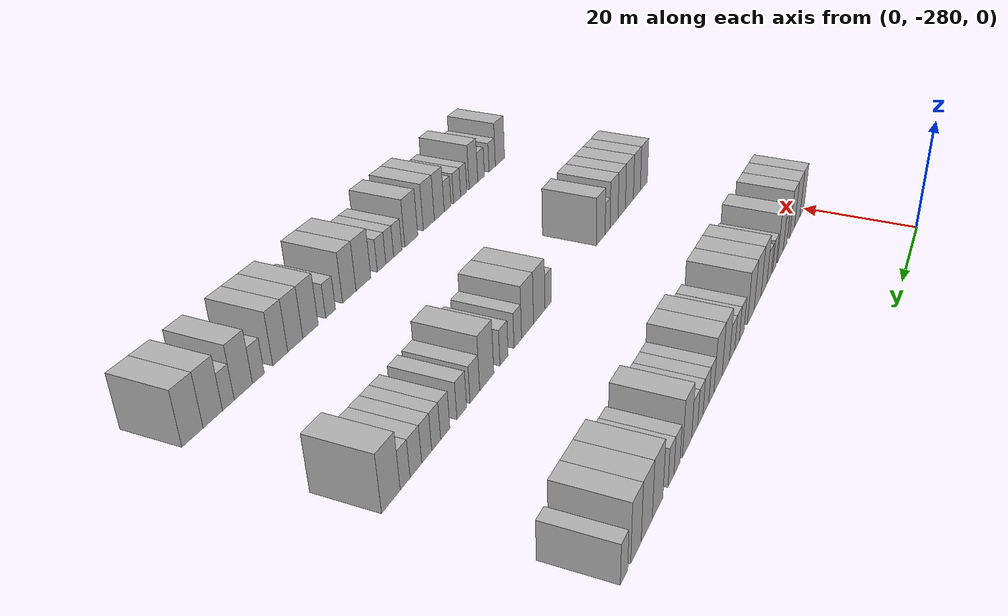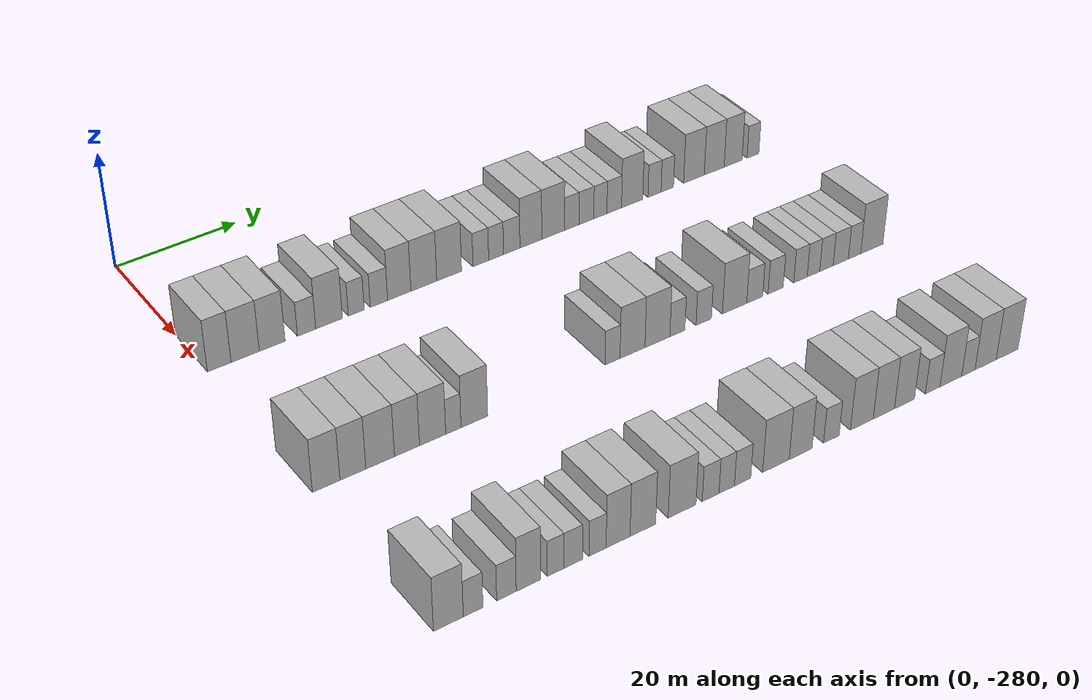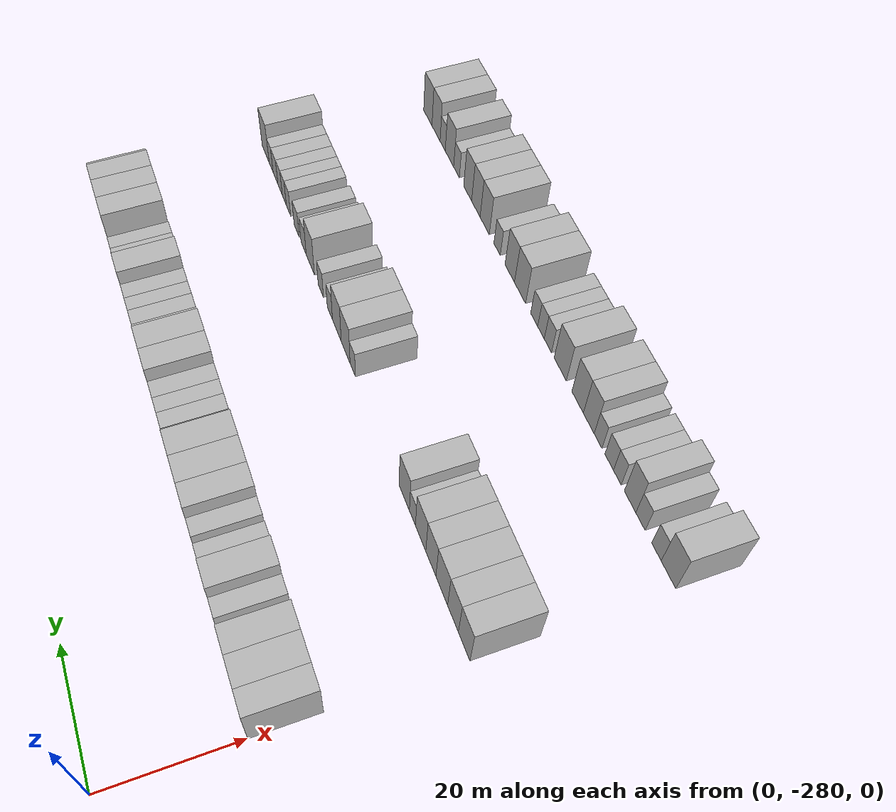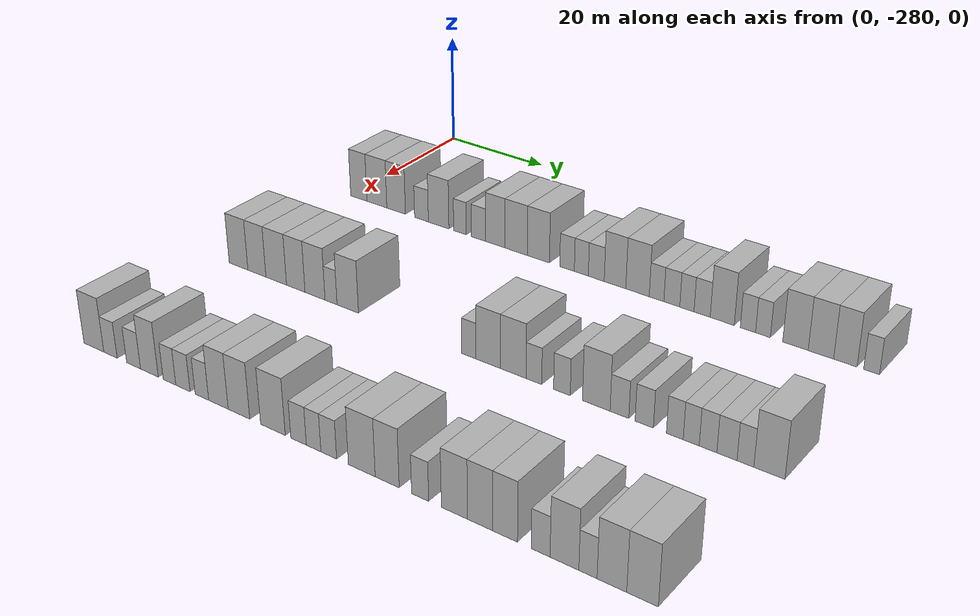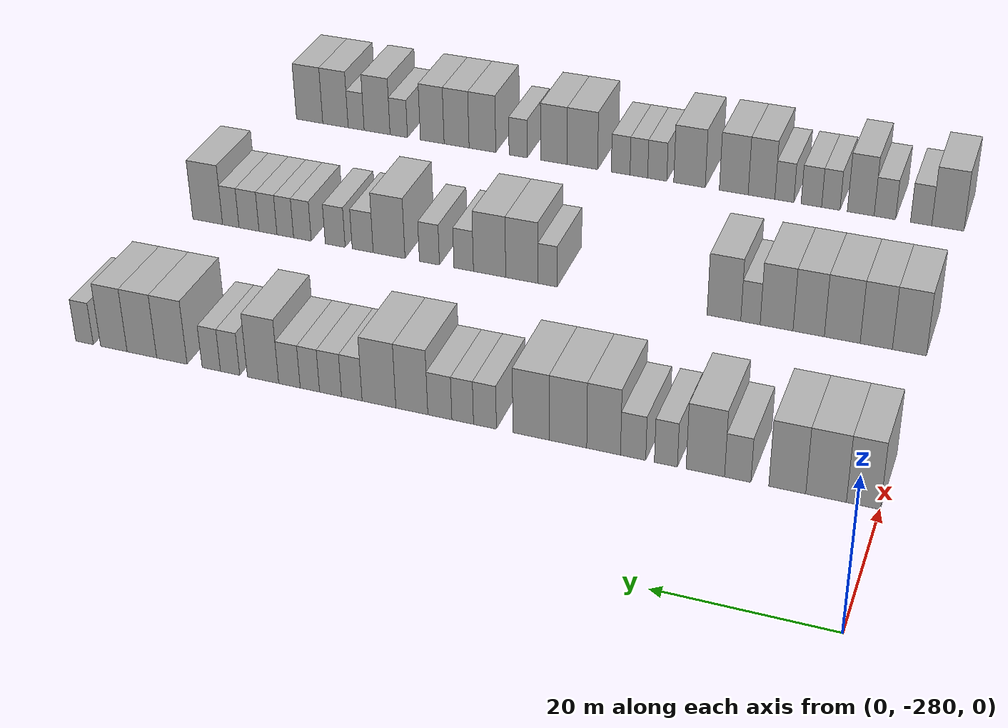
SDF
<sdf version="1.6">
 <world name="default">
  <model name="building_1">
   <static>1</static>
   <pose>25.0000 -278.1522 0 0.000000 0.000000 0.000000</pose>
   <link name="link">
    <pose>0 0 4.50 0 0 0</pose>
    <collision name="collision"><geometry><box><size>10.0000 3.6957 9.0000</size></box></geometry></collision>
    <visual name="visual">
     <cast_shadows>0</cast_shadows>
     <geometry><box><size>10.0000 3.6957 9.0000</size></box></geometry>
     <material>
      <script>
       <uri>model://HANNAS_wall/materials/scripts</uri>
       <uri>model://HANNAS_wall/materials/textures</uri>
       <name>vrc/HANNAS_wall</name>
      </script>
     </material>
    </visual>
   </link>
  </model>
  <model name="building_2">
   <static>1</static>
   <pose>25.0000 -274.0733 0 0.000000 0.000000 0.000000</pose>
   <link name="link">
    <pose>0 0 4.50 0 0 0</pose>
    <collision name="collision"><geometry><box><size>10.0000 4.4621 9.0000</size></box></geometry></collision>
    <visual name="visual">
     <cast_shadows>0</cast_shadows>
     <geometry><box><size>10.0000 4.4621 9.0000</size></box></geometry>
     <material>
      <script>
       <uri>model://HANNAS_wall/materials/scripts</uri>
       <uri>model://HANNAS_wall/materials/textures</uri>
       <name>vrc/HANNAS_wall</name>
      </script>
     </material>
    </visual>
   </link>
  </model>
  <model name="building_3">
   <static>1</static>
   <pose>25.0000 -269.7885 0 0.000000 0.000000 0.000000</pose>
   <link name="link">
    <pose>0 0 4.50 0 0 0</pose>
    <collision name="collision"><geometry><box><size>10.0000 4.1075 9.0000</size></box></geometry></collision>
    <visual name="visual">
     <cast_shadows>0</cast_shadows>
     <geometry><box><size>10.0000 4.1075 9.0000</size></box></geometry>
     <material>
      <script>
       <uri>model://HANNAS_wall/materials/scripts</uri>
       <uri>model://HANNAS_wall/materials/textures</uri>
       <name>vrc/HANNAS_wall</name>
      </script>
     </material>
    </visual>
   </link>
  </model>
  <model name="building_4">
   <static>1</static>
   <pose>25.0000 -264.2511 0 0.000000 0.000000 0.000000</pose>
   <link name="link">
    <pose>0 0 3.00 0 0 0</pose>
    <collision name="collision"><geometry><box><size>10.0000 2.9672 6.0000</size></box></geometry></collision>
    <visual name="visual">
     <cast_shadows>0</cast_shadows>
     <geometry><box><size>10.0000 2.9672 6.0000</size></box></geometry>
     <material>
      <script>
       <uri>model://HANNAS_wall/materials/scripts</uri>
       <uri>model://HANNAS_wall/materials/textures</uri>
       <name>vrc/HANNAS_wall</name>
      </script>
     </material>
    </visual>
   </link>
  </model>
  <model name="building_5">
   <static>1</static>
   <pose>25.0000 -260.5834 0 0.000000 0.000000 0.000000</pose>
   <link name="link">
    <pose>0 0 4.50 0 0 0</pose>
    <collision name="collision"><geometry><box><size>10.0000 4.3683 9.0000</size></box></geometry></collision>
    <visual name="visual">
     <cast_shadows>0</cast_shadows>
     <geometry><box><size>10.0000 4.3683 9.0000</size></box></geometry>
     <material>
      <script>
       <uri>model://HANNAS_wall/materials/scripts</uri>
       <uri>model://HANNAS_wall/materials/textures</uri>
       <name>vrc/HANNAS_wall</name>
      </script>
     </material>
    </visual>
   </link>
  </model>
  <model name="building_6">
   <static>1</static>
   <pose>25.0000 -256.0788 0 0.000000 0.000000 0.000000</pose>
   <link name="link">
    <pose>0 0 3.00 0 0 0</pose>
    <collision name="collision"><geometry><box><size>10.0000 2.6410 6.0000</size></box></geometry></collision>
    <visual name="visual">
     <cast_shadows>0</cast_shadows>
     <geometry><box><size>10.0000 2.6410 6.0000</size></box></geometry>
     <material>
      <script>
       <uri>model://HANNAS_wall/materials/scripts</uri>
       <uri>model://HANNAS_wall/materials/textures</uri>
       <name>vrc/HANNAS_wall</name>
      </script>
     </material>
    </visual>
   </link>
  </model>
  <model name="building_7">
   <static>1</static>
   <pose>25.0000 -252.2933 0 0.000000 0.000000 0.000000</pose>
   <link name="link">
    <pose>0 0 3.00 0 0 0</pose>
    <collision name="collision"><geometry><box><size>10.0000 2.9300 6.0000</size></box></geometry></collision>
    <visual name="visual">
     <cast_shadows>0</cast_shadows>
     <geometry><box><size>10.0000 2.9300 6.0000</size></box></geometry>
     <material>
      <script>
       <uri>model://HANNAS_wall/materials/scripts</uri>
       <uri>model://HANNAS_wall/materials/textures</uri>
       <name>vrc/HANNAS_wall</name>
      </script>
     </material>
    </visual>
   </link>
  </model>
  <model name="building_8">
   <static>1</static>
   <pose>25.0000 -248.8521 0 0.000000 0.000000 0.000000</pose>
   <link name="link">
    <pose>0 0 4.50 0 0 0</pose>
    <collision name="collision"><geometry><box><size>10.0000 3.9522 9.0000</size></box></geometry></collision>
    <visual name="visual">
     <cast_shadows>0</cast_shadows>
     <geometry><box><size>10.0000 3.9522 9.0000</size></box></geometry>
     <material>
      <script>
       <uri>model://HANNAS_wall/materials/scripts</uri>
       <uri>model://HANNAS_wall/materials/textures</uri>
       <name>vrc/HANNAS_wall</name>
      </script>
     </material>
    </visual>
   </link>
  </model>
  <model name="building_9">
   <static>1</static>
   <pose>25.0000 -244.6514 0 0.000000 0.000000 0.000000</pose>
   <link name="link">
    <pose>0 0 4.50 0 0 0</pose>
    <collision name="collision"><geometry><box><size>10.0000 4.4492 9.0000</size></box></geometry></collision>
    <visual name="visual">
     <cast_shadows>0</cast_shadows>
     <geometry><box><size>10.0000 4.4492 9.0000</size></box></geometry>
     <material>
      <script>
       <uri>model://HANNAS_wall/materials/scripts</uri>
       <uri>model://HANNAS_wall/materials/textures</uri>
       <name>vrc/HANNAS_wall</name>
      </script>
     </material>
    </visual>
   </link>
  </model>
  <model name="building_10">
   <static>1</static>
   <pose>25.0000 -240.2662 0 0.000000 0.000000 0.000000</pose>
   <link name="link">
    <pose>0 0 4.50 0 0 0</pose>
    <collision name="collision"><geometry><box><size>10.0000 4.3212 9.0000</size></box></geometry></collision>
    <visual name="visual">
     <cast_shadows>0</cast_shadows>
     <geometry><box><size>10.0000 4.3212 9.0000</size></box></geometry>
     <material>
      <script>
       <uri>model://HANNAS_wall/materials/scripts</uri>
       <uri>model://HANNAS_wall/materials/textures</uri>
       <name>vrc/HANNAS_wall</name>
      </script>
     </material>
    </visual>
   </link>
  </model>
  <model name="building_11">
   <static>1</static>
   <pose>25.0000 -234.7153 0 0.000000 0.000000 0.000000</pose>
   <link name="link">
    <pose>0 0 3.00 0 0 0</pose>
    <collision name="collision"><geometry><box><size>10.0000 2.7806 6.0000</size></box></geometry></collision>
    <visual name="visual">
     <cast_shadows>0</cast_shadows>
     <geometry><box><size>10.0000 2.7806 6.0000</size></box></geometry>
     <material>
      <script>
       <uri>model://HANNAS_wall/materials/scripts</uri>
       <uri>model://HANNAS_wall/materials/textures</uri>
       <name>vrc/HANNAS_wall</name>
      </script>
     </material>
    </visual>
   </link>
  </model>
  <model name="building_12">
   <static>1</static>
   <pose>25.0000 -232.0040 0 0.000000 0.000000 0.000000</pose>
   <link name="link">
    <pose>0 0 3.00 0 0 0</pose>
    <collision name="collision"><geometry><box><size>10.0000 2.6419 6.0000</size></box></geometry></collision>
    <visual name="visual">
     <cast_shadows>0</cast_shadows>
     <geometry><box><size>10.0000 2.6419 6.0000</size></box></geometry>
     <material>
      <script>
       <uri>model://HANNAS_wall/materials/scripts</uri>
       <uri>model://HANNAS_wall/materials/textures</uri>
       <name>vrc/HANNAS_wall</name>
      </script>
     </material>
    </visual>
   </link>
  </model>
  <model name="building_13">
   <static>1</static>
   <pose>25.0000 -229.2043 0 0.000000 0.000000 0.000000</pose>
   <link name="link">
    <pose>0 0 3.00 0 0 0</pose>
    <collision name="collision"><geometry><box><size>10.0000 2.9576 6.0000</size></box></geometry></collision>
    <visual name="visual">
     <cast_shadows>0</cast_shadows>
     <geometry><box><size>10.0000 2.9576 6.0000</size></box></geometry>
     <material>
      <script>
       <uri>model://HANNAS_wall/materials/scripts</uri>
       <uri>model://HANNAS_wall/materials/textures</uri>
       <name>vrc/HANNAS_wall</name>
      </script>
     </material>
    </visual>
   </link>
  </model>
  <model name="building_14">
   <static>1</static>
   <pose>25.0000 -225.7431 0 0.000000 0.000000 0.000000</pose>
   <link name="link">
    <pose>0 0 4.50 0 0 0</pose>
    <collision name="collision"><geometry><box><size>10.0000 3.9648 9.0000</size></box></geometry></collision>
    <visual name="visual">
     <cast_shadows>0</cast_shadows>
     <geometry><box><size>10.0000 3.9648 9.0000</size></box></geometry>
     <material>
      <script>
       <uri>model://HANNAS_wall/materials/scripts</uri>
       <uri>model://HANNAS_wall/materials/textures</uri>
       <name>vrc/HANNAS_wall</name>
      </script>
     </material>
    </visual>
   </link>
  </model>
  <model name="building_15">
   <static>1</static>
   <pose>25.0000 -221.6441 0 0.000000 0.000000 0.000000</pose>
   <link name="link">
    <pose>0 0 4.50 0 0 0</pose>
    <collision name="collision"><geometry><box><size>10.0000 4.2332 9.0000</size></box></geometry></collision>
    <visual name="visual">
     <cast_shadows>0</cast_shadows>
     <geometry><box><size>10.0000 4.2332 9.0000</size></box></geometry>
     <material>
      <script>
       <uri>model://HANNAS_wall/materials/scripts</uri>
       <uri>model://HANNAS_wall/materials/textures</uri>
       <name>vrc/HANNAS_wall</name>
      </script>
     </material>
    </visual>
   </link>
  </model>
  <model name="building_16">
   <static>1</static>
   <pose>25.0000 -218.2289 0 0.000000 0.000000 0.000000</pose>
   <link name="link">
    <pose>0 0 3.00 0 0 0</pose>
    <collision name="collision"><geometry><box><size>10.0000 2.5972 6.0000</size></box></geometry></collision>
    <visual name="visual">
     <cast_shadows>0</cast_shadows>
     <geometry><box><size>10.0000 2.5972 6.0000</size></box></geometry>
     <material>
      <script>
       <uri>model://HANNAS_wall/materials/scripts</uri>
       <uri>model://HANNAS_wall/materials/textures</uri>
       <name>vrc/HANNAS_wall</name>
      </script>
     </material>
    </visual>
   </link>
  </model>
  <model name="building_17">
   <static>1</static>
   <pose>25.0000 -215.5340 0 0.000000 0.000000 0.000000</pose>
   <link name="link">
    <pose>0 0 3.00 0 0 0</pose>
    <collision name="collision"><geometry><box><size>10.0000 2.7925 6.0000</size></box></geometry></collision>
    <visual name="visual">
     <cast_shadows>0</cast_shadows>
     <geometry><box><size>10.0000 2.7925 6.0000</size></box></geometry>
     <material>
      <script>
       <uri>model://HANNAS_wall/materials/scripts</uri>
       <uri>model://HANNAS_wall/materials/textures</uri>
       <name>vrc/HANNAS_wall</name>
      </script>
     </material>
    </visual>
   </link>
  </model>
  <model name="building_18">
   <static>1</static>
   <pose>25.0000 -212.8991 0 0.000000 0.000000 0.000000</pose>
   <link name="link">
    <pose>0 0 3.00 0 0 0</pose>
    <collision name="collision"><geometry><box><size>10.0000 2.4773 6.0000</size></box></geometry></collision>
    <visual name="visual">
     <cast_shadows>0</cast_shadows>
     <geometry><box><size>10.0000 2.4773 6.0000</size></box></geometry>
     <material>
      <script>
       <uri>model://HANNAS_wall/materials/scripts</uri>
       <uri>model://HANNAS_wall/materials/textures</uri>
       <name>vrc/HANNAS_wall</name>
      </script>
     </material>
    </visual>
   </link>
  </model>
  <model name="building_19">
   <static>1</static>
   <pose>25.0000 -210.2767 0 0.000000 0.000000 0.000000</pose>
   <link name="link">
    <pose>0 0 3.00 0 0 0</pose>
    <collision name="collision"><geometry><box><size>10.0000 2.7677 6.0000</size></box></geometry></collision>
    <visual name="visual">
     <cast_shadows>0</cast_shadows>
     <geometry><box><size>10.0000 2.7677 6.0000</size></box></geometry>
     <material>
      <script>
       <uri>model://HANNAS_wall/materials/scripts</uri>
       <uri>model://HANNAS_wall/materials/textures</uri>
       <name>vrc/HANNAS_wall</name>
      </script>
     </material>
    </visual>
   </link>
  </model>
  <model name="building_20">
   <static>1</static>
   <pose>25.0000 -206.8603 0 0.000000 0.000000 0.000000</pose>
   <link name="link">
    <pose>0 0 4.50 0 0 0</pose>
    <collision name="collision"><geometry><box><size>10.0000 4.0650 9.0000</size></box></geometry></collision>
    <visual name="visual">
     <cast_shadows>0</cast_shadows>
     <geometry><box><size>10.0000 4.0650 9.0000</size></box></geometry>
     <material>
      <script>
       <uri>model://HANNAS_wall/materials/scripts</uri>
       <uri>model://HANNAS_wall/materials/textures</uri>
       <name>vrc/HANNAS_wall</name>
      </script>
     </material>
    </visual>
   </link>
  </model>
  <model name="building_21">
   <static>1</static>
   <pose>25.0000 -202.5629 0 0.000000 0.000000 0.000000</pose>
   <link name="link">
    <pose>0 0 3.00 0 0 0</pose>
    <collision name="collision"><geometry><box><size>10.0000 2.5299 6.0000</size></box></geometry></collision>
    <visual name="visual">
     <cast_shadows>0</cast_shadows>
     <geometry><box><size>10.0000 2.5299 6.0000</size></box></geometry>
     <material>
      <script>
       <uri>model://HANNAS_wall/materials/scripts</uri>
       <uri>model://HANNAS_wall/materials/textures</uri>
       <name>vrc/HANNAS_wall</name>
      </script>
     </material>
    </visual>
   </link>
  </model>
  <model name="building_22">
   <static>1</static>
   <pose>25.0000 -200.0885 0 0.000000 0.000000 0.000000</pose>
   <link name="link">
    <pose>0 0 3.00 0 0 0</pose>
    <collision name="collision"><geometry><box><size>10.0000 2.4189 6.0000</size></box></geometry></collision>
    <visual name="visual">
     <cast_shadows>0</cast_shadows>
     <geometry><box><size>10.0000 2.4189 6.0000</size></box></geometry>
     <material>
      <script>
       <uri>model://HANNAS_wall/materials/scripts</uri>
       <uri>model://HANNAS_wall/materials/textures</uri>
       <name>vrc/HANNAS_wall</name>
      </script>
     </material>
    </visual>
   </link>
  </model>
  <model name="building_23">
   <static>1</static>
   <pose>25.0000 -194.8447 0 0.000000 0.000000 0.000000</pose>
   <link name="link">
    <pose>0 0 4.50 0 0 0</pose>
    <collision name="collision"><geometry><box><size>10.0000 4.0688 9.0000</size></box></geometry></collision>
    <visual name="visual">
     <cast_shadows>0</cast_shadows>
     <geometry><box><size>10.0000 4.0688 9.0000</size></box></geometry>
     <material>
      <script>
       <uri>model://HANNAS_wall/materials/scripts</uri>
       <uri>model://HANNAS_wall/materials/textures</uri>
       <name>vrc/HANNAS_wall</name>
      </script>
     </material>
    </visual>
   </link>
  </model>
  <model name="building_24">
   <static>1</static>
   <pose>25.0000 -190.8185 0 0.000000 0.000000 0.000000</pose>
   <link name="link">
    <pose>0 0 4.50 0 0 0</pose>
    <collision name="collision"><geometry><box><size>10.0000 3.9835 9.0000</size></box></geometry></collision>
    <visual name="visual">
     <cast_shadows>0</cast_shadows>
     <geometry><box><size>10.0000 3.9835 9.0000</size></box></geometry>
     <material>
      <script>
       <uri>model://HANNAS_wall/materials/scripts</uri>
       <uri>model://HANNAS_wall/materials/textures</uri>
       <name>vrc/HANNAS_wall</name>
      </script>
     </material>
    </visual>
   </link>
  </model>
  <model name="building_25">
   <static>1</static>
   <pose>25.0000 -187.0232 0 0.000000 0.000000 0.000000</pose>
   <link name="link">
    <pose>0 0 4.50 0 0 0</pose>
    <collision name="collision"><geometry><box><size>10.0000 3.6071 9.0000</size></box></geometry></collision>
    <visual name="visual">
     <cast_shadows>0</cast_shadows>
     <geometry><box><size>10.0000 3.6071 9.0000</size></box></geometry>
     <material>
      <script>
       <uri>model://HANNAS_wall/materials/scripts</uri>
       <uri>model://HANNAS_wall/materials/textures</uri>
       <name>vrc/HANNAS_wall</name>
      </script>
     </material>
    </visual>
   </link>
  </model>
  <model name="building_26">
   <static>1</static>
   <pose>25.0000 -183.0187 0 0.000000 0.000000 0.000000</pose>
   <link name="link">
    <pose>0 0 3.00 0 0 0</pose>
    <collision name="collision"><geometry><box><size>10.0000 2.4019 6.0000</size></box></geometry></collision>
    <visual name="visual">
     <cast_shadows>0</cast_shadows>
     <geometry><box><size>10.0000 2.4019 6.0000</size></box></geometry>
     <material>
      <script>
       <uri>model://HANNAS_wall/materials/scripts</uri>
       <uri>model://HANNAS_wall/materials/textures</uri>
       <name>vrc/HANNAS_wall</name>
      </script>
     </material>
    </visual>
   </link>
  </model>
  <model name="building_146">
   <static>1</static>
   <pose>55.0000 -277.9407 0 0.000000 0.000000 0.000000</pose>
   <link name="link">
    <pose>0 0 4.50 0 0 0</pose>
    <collision name="collision"><geometry><box><size>10.0000 4.1187 9.0000</size></box></geometry></collision>
    <visual name="visual">
     <cast_shadows>0</cast_shadows>
     <geometry><box><size>10.0000 4.1187 9.0000</size></box></geometry>
     <material>
      <script>
       <uri>model://HANNAS_wall/materials/scripts</uri>
       <uri>model://HANNAS_wall/materials/textures</uri>
       <name>vrc/HANNAS_wall</name>
      </script>
     </material>
    </visual>
   </link>
  </model>
  <model name="building_147">
   <static>1</static>
   <pose>55.0000 -273.9208 0 0.000000 0.000000 0.000000</pose>
   <link name="link">
    <pose>0 0 4.50 0 0 0</pose>
    <collision name="collision"><geometry><box><size>10.0000 3.9211 9.0000</size></box></geometry></collision>
    <visual name="visual">
     <cast_shadows>0</cast_shadows>
     <geometry><box><size>10.0000 3.9211 9.0000</size></box></geometry>
     <material>
      <script>
       <uri>model://HANNAS_wall/materials/scripts</uri>
       <uri>model://HANNAS_wall/materials/textures</uri>
       <name>vrc/HANNAS_wall</name>
      </script>
     </material>
    </visual>
   </link>
  </model>
  <model name="building_148">
   <static>1</static>
   <pose>55.0000 -269.7641 0 0.000000 0.000000 0.000000</pose>
   <link name="link">
    <pose>0 0 4.50 0 0 0</pose>
    <collision name="collision"><geometry><box><size>10.0000 4.3924 9.0000</size></box></geometry></collision>
    <visual name="visual">
     <cast_shadows>0</cast_shadows>
     <geometry><box><size>10.0000 4.3924 9.0000</size></box></geometry>
     <material>
      <script>
       <uri>model://HANNAS_wall/materials/scripts</uri>
       <uri>model://HANNAS_wall/materials/textures</uri>
       <name>vrc/HANNAS_wall</name>
      </script>
     </material>
    </visual>
   </link>
  </model>
  <model name="building_149">
   <static>1</static>
   <pose>55.0000 -265.6263 0 0.000000 0.000000 0.000000</pose>
   <link name="link">
    <pose>0 0 4.50 0 0 0</pose>
    <collision name="collision"><geometry><box><size>10.0000 3.8832 9.0000</size></box></geometry></collision>
    <visual name="visual">
     <cast_shadows>0</cast_shadows>
     <geometry><box><size>10.0000 3.8832 9.0000</size></box></geometry>
     <material>
      <script>
       <uri>model://HANNAS_wall/materials/scripts</uri>
       <uri>model://HANNAS_wall/materials/textures</uri>
       <name>vrc/HANNAS_wall</name>
      </script>
     </material>
    </visual>
   </link>
  </model>
  <model name="building_150">
   <static>1</static>
   <pose>55.0000 -261.6253 0 0.000000 0.000000 0.000000</pose>
   <link name="link">
    <pose>0 0 4.50 0 0 0</pose>
    <collision name="collision"><geometry><box><size>10.0000 4.1189 9.0000</size></box></geometry></collision>
    <visual name="visual">
     <cast_shadows>0</cast_shadows>
     <geometry><box><size>10.0000 4.1189 9.0000</size></box></geometry>
     <material>
      <script>
       <uri>model://HANNAS_wall/materials/scripts</uri>
       <uri>model://HANNAS_wall/materials/textures</uri>
       <name>vrc/HANNAS_wall</name>
      </script>
     </material>
    </visual>
   </link>
  </model>
  <model name="building_151">
   <static>1</static>
   <pose>55.0000 -258.3470 0 0.000000 0.000000 0.000000</pose>
   <link name="link">
    <pose>0 0 3.00 0 0 0</pose>
    <collision name="collision"><geometry><box><size>10.0000 2.4375 6.0000</size></box></geometry></collision>
    <visual name="visual">
     <cast_shadows>0</cast_shadows>
     <geometry><box><size>10.0000 2.4375 6.0000</size></box></geometry>
     <material>
      <script>
       <uri>model://HANNAS_wall/materials/scripts</uri>
       <uri>model://HANNAS_wall/materials/textures</uri>
       <name>vrc/HANNAS_wall</name>
      </script>
     </material>
    </visual>
   </link>
  </model>
  <model name="building_152">
   <static>1</static>
   <pose>55.0000 -254.9903 0 0.000000 0.000000 0.000000</pose>
   <link name="link">
    <pose>0 0 4.50 0 0 0</pose>
    <collision name="collision"><geometry><box><size>10.0000 4.2760 9.0000</size></box></geometry></collision>
    <visual name="visual">
     <cast_shadows>0</cast_shadows>
     <geometry><box><size>10.0000 4.2760 9.0000</size></box></geometry>
     <material>
      <script>
       <uri>model://HANNAS_wall/materials/scripts</uri>
       <uri>model://HANNAS_wall/materials/textures</uri>
       <name>vrc/HANNAS_wall</name>
      </script>
     </material>
    </visual>
   </link>
  </model>
  <model name="building_153">
   <static>1</static>
   <pose>55.0000 -232.0086 0 0.000000 0.000000 0.000000</pose>
   <link name="link">
    <pose>0 0 3.00 0 0 0</pose>
    <collision name="collision"><geometry><box><size>10.0000 2.5625 6.0000</size></box></geometry></collision>
    <visual name="visual">
     <cast_shadows>0</cast_shadows>
     <geometry><box><size>10.0000 2.5625 6.0000</size></box></geometry>
     <material>
      <script>
       <uri>model://HANNAS_wall/materials/scripts</uri>
       <uri>model://HANNAS_wall/materials/textures</uri>
       <name>vrc/HANNAS_wall</name>
      </script>
     </material>
    </visual>
   </link>
  </model>
  <model name="building_154">
   <static>1</static>
   <pose>55.0000 -228.5545 0 0.000000 0.000000 0.000000</pose>
   <link name="link">
    <pose>0 0 4.50 0 0 0</pose>
    <collision name="collision"><geometry><box><size>10.0000 4.3457 9.0000</size></box></geometry></collision>
    <visual name="visual">
     <cast_shadows>0</cast_shadows>
     <geometry><box><size>10.0000 4.3457 9.0000</size></box></geometry>
     <material>
      <script>
       <uri>model://HANNAS_wall/materials/scripts</uri>
       <uri>model://HANNAS_wall/materials/textures</uri>
       <name>vrc/HANNAS_wall</name>
      </script>
     </material>
    </visual>
   </link>
  </model>
  <model name="building_155">
   <static>1</static>
   <pose>55.0000 -224.1801 0 0.000000 0.000000 0.000000</pose>
   <link name="link">
    <pose>0 0 4.50 0 0 0</pose>
    <collision name="collision"><geometry><box><size>10.0000 4.4030 9.0000</size></box></geometry></collision>
    <visual name="visual">
     <cast_shadows>0</cast_shadows>
     <geometry><box><size>10.0000 4.4030 9.0000</size></box></geometry>
     <material>
      <script>
       <uri>model://HANNAS_wall/materials/scripts</uri>
       <uri>model://HANNAS_wall/materials/textures</uri>
       <name>vrc/HANNAS_wall</name>
      </script>
     </material>
    </visual>
   </link>
  </model>
  <model name="building_156">
   <static>1</static>
   <pose>55.0000 -220.6407 0 0.000000 0.000000 0.000000</pose>
   <link name="link">
    <pose>0 0 3.00 0 0 0</pose>
    <collision name="collision"><geometry><box><size>10.0000 2.6757 6.0000</size></box></geometry></collision>
    <visual name="visual">
     <cast_shadows>0</cast_shadows>
     <geometry><box><size>10.0000 2.6757 6.0000</size></box></geometry>
     <material>
      <script>
       <uri>model://HANNAS_wall/materials/scripts</uri>
       <uri>model://HANNAS_wall/materials/textures</uri>
       <name>vrc/HANNAS_wall</name>
      </script>
     </material>
    </visual>
   </link>
  </model>
  <model name="building_157">
   <static>1</static>
   <pose>55.0000 -215.9132 0 0.000000 0.000000 0.000000</pose>
   <link name="link">
    <pose>0 0 3.00 0 0 0</pose>
    <collision name="collision"><geometry><box><size>10.0000 2.7794 6.0000</size></box></geometry></collision>
    <visual name="visual">
     <cast_shadows>0</cast_shadows>
     <geometry><box><size>10.0000 2.7794 6.0000</size></box></geometry>
     <material>
      <script>
       <uri>model://HANNAS_wall/materials/scripts</uri>
       <uri>model://HANNAS_wall/materials/textures</uri>
       <name>vrc/HANNAS_wall</name>
      </script>
     </material>
    </visual>
   </link>
  </model>
  <model name="building_158">
   <static>1</static>
   <pose>55.0000 -210.2858 0 0.000000 0.000000 0.000000</pose>
   <link name="link">
    <pose>0 0 4.50 0 0 0</pose>
    <collision name="collision"><geometry><box><size>10.0000 4.4754 9.0000</size></box></geometry></collision>
    <visual name="visual">
     <cast_shadows>0</cast_shadows>
     <geometry><box><size>10.0000 4.4754 9.0000</size></box></geometry>
     <material>
      <script>
       <uri>model://HANNAS_wall/materials/scripts</uri>
       <uri>model://HANNAS_wall/materials/textures</uri>
       <name>vrc/HANNAS_wall</name>
      </script>
     </material>
    </visual>
   </link>
  </model>
  <model name="building_159">
   <static>1</static>
   <pose>55.0000 -206.5651 0 0.000000 0.000000 0.000000</pose>
   <link name="link">
    <pose>0 0 3.00 0 0 0</pose>
    <collision name="collision"><geometry><box><size>10.0000 2.9661 6.0000</size></box></geometry></collision>
    <visual name="visual">
     <cast_shadows>0</cast_shadows>
     <geometry><box><size>10.0000 2.9661 6.0000</size></box></geometry>
     <material>
      <script>
       <uri>model://HANNAS_wall/materials/scripts</uri>
       <uri>model://HANNAS_wall/materials/textures</uri>
       <name>vrc/HANNAS_wall</name>
      </script>
     </material>
    </visual>
   </link>
  </model>
  <model name="building_160">
   <static>1</static>
   <pose>55.0000 -202.6608 0 0.000000 0.000000 0.000000</pose>
   <link name="link">
    <pose>0 0 3.00 0 0 0</pose>
    <collision name="collision"><geometry><box><size>10.0000 2.8425 6.0000</size></box></geometry></collision>
    <visual name="visual">
     <cast_shadows>0</cast_shadows>
     <geometry><box><size>10.0000 2.8425 6.0000</size></box></geometry>
     <material>
      <script>
       <uri>model://HANNAS_wall/materials/scripts</uri>
       <uri>model://HANNAS_wall/materials/textures</uri>
       <name>vrc/HANNAS_wall</name>
      </script>
     </material>
    </visual>
   </link>
  </model>
  <model name="building_161">
   <static>1</static>
   <pose>55.0000 -197.9616 0 0.000000 0.000000 0.000000</pose>
   <link name="link">
    <pose>0 0 3.00 0 0 0</pose>
    <collision name="collision"><geometry><box><size>10.0000 2.5559 6.0000</size></box></geometry></collision>
    <visual name="visual">
     <cast_shadows>0</cast_shadows>
     <geometry><box><size>10.0000 2.5559 6.0000</size></box></geometry>
     <material>
      <script>
       <uri>model://HANNAS_wall/materials/scripts</uri>
       <uri>model://HANNAS_wall/materials/textures</uri>
       <name>vrc/HANNAS_wall</name>
      </script>
     </material>
    </visual>
   </link>
  </model>
  <model name="building_162">
   <static>1</static>
   <pose>55.0000 -195.4822 0 0.000000 0.000000 0.000000</pose>
   <link name="link">
    <pose>0 0 3.00 0 0 0</pose>
    <collision name="collision"><geometry><box><size>10.0000 2.4030 6.0000</size></box></geometry></collision>
    <visual name="visual">
     <cast_shadows>0</cast_shadows>
     <geometry><box><size>10.0000 2.4030 6.0000</size></box></geometry>
     <material>
      <script>
       <uri>model://HANNAS_wall/materials/scripts</uri>
       <uri>model://HANNAS_wall/materials/textures</uri>
       <name>vrc/HANNAS_wall</name>
      </script>
     </material>
    </visual>
   </link>
  </model>
  <model name="building_163">
   <static>1</static>
   <pose>55.0000 -192.9745 0 0.000000 0.000000 0.000000</pose>
   <link name="link">
    <pose>0 0 3.00 0 0 0</pose>
    <collision name="collision"><geometry><box><size>10.0000 2.6123 6.0000</size></box></geometry></collision>
    <visual name="visual">
     <cast_shadows>0</cast_shadows>
     <geometry><box><size>10.0000 2.6123 6.0000</size></box></geometry>
     <material>
      <script>
       <uri>model://HANNAS_wall/materials/scripts</uri>
       <uri>model://HANNAS_wall/materials/textures</uri>
       <name>vrc/HANNAS_wall</name>
      </script>
     </material>
    </visual>
   </link>
  </model>
  <model name="building_164">
   <static>1</static>
   <pose>55.0000 -190.1978 0 0.000000 0.000000 0.000000</pose>
   <link name="link">
    <pose>0 0 3.00 0 0 0</pose>
    <collision name="collision"><geometry><box><size>10.0000 2.9413 6.0000</size></box></geometry></collision>
    <visual name="visual">
     <cast_shadows>0</cast_shadows>
     <geometry><box><size>10.0000 2.9413 6.0000</size></box></geometry>
     <material>
      <script>
       <uri>model://HANNAS_wall/materials/scripts</uri>
       <uri>model://HANNAS_wall/materials/textures</uri>
       <name>vrc/HANNAS_wall</name>
      </script>
     </material>
    </visual>
   </link>
  </model>
  <model name="building_165">
   <static>1</static>
   <pose>55.0000 -187.5165 0 0.000000 0.000000 0.000000</pose>
   <link name="link">
    <pose>0 0 3.00 0 0 0</pose>
    <collision name="collision"><geometry><box><size>10.0000 2.4213 6.0000</size></box></geometry></collision>
    <visual name="visual">
     <cast_shadows>0</cast_shadows>
     <geometry><box><size>10.0000 2.4213 6.0000</size></box></geometry>
     <material>
      <script>
       <uri>model://HANNAS_wall/materials/scripts</uri>
       <uri>model://HANNAS_wall/materials/textures</uri>
       <name>vrc/HANNAS_wall</name>
      </script>
     </material>
    </visual>
   </link>
  </model>
  <model name="building_166">
   <static>1</static>
   <pose>55.0000 -184.1040 0 0.000000 0.000000 0.000000</pose>
   <link name="link">
    <pose>0 0 4.50 0 0 0</pose>
    <collision name="collision"><geometry><box><size>10.0000 4.4035 9.0000</size></box></geometry></collision>
    <visual name="visual">
     <cast_shadows>0</cast_shadows>
     <geometry><box><size>10.0000 4.4035 9.0000</size></box></geometry>
     <material>
      <script>
       <uri>model://HANNAS_wall/materials/scripts</uri>
       <uri>model://HANNAS_wall/materials/textures</uri>
       <name>vrc/HANNAS_wall</name>
      </script>
     </material>
    </visual>
   </link>
  </model>
  <model name="building_286">
   <static>1</static>
   <pose>85.0000 -277.8652 0 0.000000 0.000000 0.000000</pose>
   <link name="link">
    <pose>0 0 4.50 0 0 0</pose>
    <collision name="collision"><geometry><box><size>10.0000 4.2696 9.0000</size></box></geometry></collision>
    <visual name="visual">
     <cast_shadows>0</cast_shadows>
     <geometry><box><size>10.0000 4.2696 9.0000</size></box></geometry>
     <material>
      <script>
       <uri>model://HANNAS_wall/materials/scripts</uri>
       <uri>model://HANNAS_wall/materials/textures</uri>
       <name>vrc/HANNAS_wall</name>
      </script>
     </material>
    </visual>
   </link>
  </model>
  <model name="building_287">
   <static>1</static>
   <pose>85.0000 -274.3171 0 0.000000 0.000000 0.000000</pose>
   <link name="link">
    <pose>0 0 3.00 0 0 0</pose>
    <collision name="collision"><geometry><box><size>10.0000 2.8266 6.0000</size></box></geometry></collision>
    <visual name="visual">
     <cast_shadows>0</cast_shadows>
     <geometry><box><size>10.0000 2.8266 6.0000</size></box></geometry>
     <material>
      <script>
       <uri>model://HANNAS_wall/materials/scripts</uri>
       <uri>model://HANNAS_wall/materials/textures</uri>
       <name>vrc/HANNAS_wall</name>
      </script>
     </material>
    </visual>
   </link>
  </model>
  <model name="building_288">
   <static>1</static>
   <pose>85.0000 -269.4644 0 0.000000 0.000000 0.000000</pose>
   <link name="link">
    <pose>0 0 3.00 0 0 0</pose>
    <collision name="collision"><geometry><box><size>10.0000 2.8787 6.0000</size></box></geometry></collision>
    <visual name="visual">
     <cast_shadows>0</cast_shadows>
     <geometry><box><size>10.0000 2.8787 6.0000</size></box></geometry>
     <material>
      <script>
       <uri>model://HANNAS_wall/materials/scripts</uri>
       <uri>model://HANNAS_wall/materials/textures</uri>
       <name>vrc/HANNAS_wall</name>
      </script>
     </material>
    </visual>
   </link>
  </model>
  <model name="building_289">
   <static>1</static>
   <pose>85.0000 -266.2070 0 0.000000 0.000000 0.000000</pose>
   <link name="link">
    <pose>0 0 4.50 0 0 0</pose>
    <collision name="collision"><geometry><box><size>10.0000 3.6362 9.0000</size></box></geometry></collision>
    <visual name="visual">
     <cast_shadows>0</cast_shadows>
     <geometry><box><size>10.0000 3.6362 9.0000</size></box></geometry>
     <material>
      <script>
       <uri>model://HANNAS_wall/materials/scripts</uri>
       <uri>model://HANNAS_wall/materials/textures</uri>
       <name>vrc/HANNAS_wall</name>
      </script>
     </material>
    </visual>
   </link>
  </model>
  <model name="building_290">
   <static>1</static>
   <pose>85.0000 -262.1324 0 0.000000 0.000000 0.000000</pose>
   <link name="link">
    <pose>0 0 3.00 0 0 0</pose>
    <collision name="collision"><geometry><box><size>10.0000 2.5130 6.0000</size></box></geometry></collision>
    <visual name="visual">
     <cast_shadows>0</cast_shadows>
     <geometry><box><size>10.0000 2.5130 6.0000</size></box></geometry>
     <material>
      <script>
       <uri>model://HANNAS_wall/materials/scripts</uri>
       <uri>model://HANNAS_wall/materials/textures</uri>
       <name>vrc/HANNAS_wall</name>
      </script>
     </material>
    </visual>
   </link>
  </model>
  <model name="building_291">
   <static>1</static>
   <pose>85.0000 -259.4639 0 0.000000 0.000000 0.000000</pose>
   <link name="link">
    <pose>0 0 3.00 0 0 0</pose>
    <collision name="collision"><geometry><box><size>10.0000 2.8239 6.0000</size></box></geometry></collision>
    <visual name="visual">
     <cast_shadows>0</cast_shadows>
     <geometry><box><size>10.0000 2.8239 6.0000</size></box></geometry>
     <material>
      <script>
       <uri>model://HANNAS_wall/materials/scripts</uri>
       <uri>model://HANNAS_wall/materials/textures</uri>
       <name>vrc/HANNAS_wall</name>
      </script>
     </material>
    </visual>
   </link>
  </model>
  <model name="building_292">
   <static>1</static>
   <pose>85.0000 -255.7366 0 0.000000 0.000000 0.000000</pose>
   <link name="link">
    <pose>0 0 3.00 0 0 0</pose>
    <collision name="collision"><geometry><box><size>10.0000 2.6308 6.0000</size></box></geometry></collision>
    <visual name="visual">
     <cast_shadows>0</cast_shadows>
     <geometry><box><size>10.0000 2.6308 6.0000</size></box></geometry>
     <material>
      <script>
       <uri>model://HANNAS_wall/materials/scripts</uri>
       <uri>model://HANNAS_wall/materials/textures</uri>
       <name>vrc/HANNAS_wall</name>
      </script>
     </material>
    </visual>
   </link>
  </model>
  <model name="building_293">
   <static>1</static>
   <pose>85.0000 -252.5564 0 0.000000 0.000000 0.000000</pose>
   <link name="link">
    <pose>0 0 4.50 0 0 0</pose>
    <collision name="collision"><geometry><box><size>10.0000 3.7295 9.0000</size></box></geometry></collision>
    <visual name="visual">
     <cast_shadows>0</cast_shadows>
     <geometry><box><size>10.0000 3.7295 9.0000</size></box></geometry>
     <material>
      <script>
       <uri>model://HANNAS_wall/materials/scripts</uri>
       <uri>model://HANNAS_wall/materials/textures</uri>
       <name>vrc/HANNAS_wall</name>
      </script>
     </material>
    </visual>
   </link>
  </model>
  <model name="building_294">
   <static>1</static>
   <pose>85.0000 -248.6690 0 0.000000 0.000000 0.000000</pose>
   <link name="link">
    <pose>0 0 4.50 0 0 0</pose>
    <collision name="collision"><geometry><box><size>10.0000 4.0454 9.0000</size></box></geometry></collision>
    <visual name="visual">
     <cast_shadows>0</cast_shadows>
     <geometry><box><size>10.0000 4.0454 9.0000</size></box></geometry>
     <material>
      <script>
       <uri>model://HANNAS_wall/materials/scripts</uri>
       <uri>model://HANNAS_wall/materials/textures</uri>
       <name>vrc/HANNAS_wall</name>
      </script>
     </material>
    </visual>
   </link>
  </model>
  <model name="building_295">
   <static>1</static>
   <pose>85.0000 -242.4049 0 0.000000 0.000000 0.000000</pose>
   <link name="link">
    <pose>0 0 4.50 0 0 0</pose>
    <collision name="collision"><geometry><box><size>10.0000 4.4828 9.0000</size></box></geometry></collision>
    <visual name="visual">
     <cast_shadows>0</cast_shadows>
     <geometry><box><size>10.0000 4.4828 9.0000</size></box></geometry>
     <material>
      <script>
       <uri>model://HANNAS_wall/materials/scripts</uri>
       <uri>model://HANNAS_wall/materials/textures</uri>
       <name>vrc/HANNAS_wall</name>
      </script>
     </material>
    </visual>
   </link>
  </model>
  <model name="building_296">
   <static>1</static>
   <pose>85.0000 -237.7885 0 0.000000 0.000000 0.000000</pose>
   <link name="link">
    <pose>0 0 3.00 0 0 0</pose>
    <collision name="collision"><geometry><box><size>10.0000 2.7499 6.0000</size></box></geometry></collision>
    <visual name="visual">
     <cast_shadows>0</cast_shadows>
     <geometry><box><size>10.0000 2.7499 6.0000</size></box></geometry>
     <material>
      <script>
       <uri>model://HANNAS_wall/materials/scripts</uri>
       <uri>model://HANNAS_wall/materials/textures</uri>
       <name>vrc/HANNAS_wall</name>
      </script>
     </material>
    </visual>
   </link>
  </model>
  <model name="building_297">
   <static>1</static>
   <pose>85.0000 -235.1396 0 0.000000 0.000000 0.000000</pose>
   <link name="link">
    <pose>0 0 3.00 0 0 0</pose>
    <collision name="collision"><geometry><box><size>10.0000 2.5479 6.0000</size></box></geometry></collision>
    <visual name="visual">
     <cast_shadows>0</cast_shadows>
     <geometry><box><size>10.0000 2.5479 6.0000</size></box></geometry>
     <material>
      <script>
       <uri>model://HANNAS_wall/materials/scripts</uri>
       <uri>model://HANNAS_wall/materials/textures</uri>
       <name>vrc/HANNAS_wall</name>
      </script>
     </material>
    </visual>
   </link>
  </model>
  <model name="building_298">
   <static>1</static>
   <pose>85.0000 -232.5101 0 0.000000 0.000000 0.000000</pose>
   <link name="link">
    <pose>0 0 3.00 0 0 0</pose>
    <collision name="collision"><geometry><box><size>10.0000 2.7112 6.0000</size></box></geometry></collision>
    <visual name="visual">
     <cast_shadows>0</cast_shadows>
     <geometry><box><size>10.0000 2.7112 6.0000</size></box></geometry>
     <material>
      <script>
       <uri>model://HANNAS_wall/materials/scripts</uri>
       <uri>model://HANNAS_wall/materials/textures</uri>
       <name>vrc/HANNAS_wall</name>
      </script>
     </material>
    </visual>
   </link>
  </model>
  <model name="building_299">
   <static>1</static>
   <pose>85.0000 -226.9055 0 0.000000 0.000000 0.000000</pose>
   <link name="link">
    <pose>0 0 4.50 0 0 0</pose>
    <collision name="collision"><geometry><box><size>10.0000 4.4979 9.0000</size></box></geometry></collision>
    <visual name="visual">
     <cast_shadows>0</cast_shadows>
     <geometry><box><size>10.0000 4.4979 9.0000</size></box></geometry>
     <material>
      <script>
       <uri>model://HANNAS_wall/materials/scripts</uri>
       <uri>model://HANNAS_wall/materials/textures</uri>
       <name>vrc/HANNAS_wall</name>
      </script>
     </material>
    </visual>
   </link>
  </model>
  <model name="building_300">
   <static>1</static>
   <pose>85.0000 -222.6947 0 0.000000 0.000000 0.000000</pose>
   <link name="link">
    <pose>0 0 4.50 0 0 0</pose>
    <collision name="collision"><geometry><box><size>10.0000 3.9237 9.0000</size></box></geometry></collision>
    <visual name="visual">
     <cast_shadows>0</cast_shadows>
     <geometry><box><size>10.0000 3.9237 9.0000</size></box></geometry>
     <material>
      <script>
       <uri>model://HANNAS_wall/materials/scripts</uri>
       <uri>model://HANNAS_wall/materials/textures</uri>
       <name>vrc/HANNAS_wall</name>
      </script>
     </material>
    </visual>
   </link>
  </model>
  <model name="building_301">
   <static>1</static>
   <pose>85.0000 -217.3781 0 0.000000 0.000000 0.000000</pose>
   <link name="link">
    <pose>0 0 3.00 0 0 0</pose>
    <collision name="collision"><geometry><box><size>10.0000 2.7094 6.0000</size></box></geometry></collision>
    <visual name="visual">
     <cast_shadows>0</cast_shadows>
     <geometry><box><size>10.0000 2.7094 6.0000</size></box></geometry>
     <material>
      <script>
       <uri>model://HANNAS_wall/materials/scripts</uri>
       <uri>model://HANNAS_wall/materials/textures</uri>
       <name>vrc/HANNAS_wall</name>
      </script>
     </material>
    </visual>
   </link>
  </model>
  <model name="building_302">
   <static>1</static>
   <pose>85.0000 -212.0019 0 0.000000 0.000000 0.000000</pose>
   <link name="link">
    <pose>0 0 4.50 0 0 0</pose>
    <collision name="collision"><geometry><box><size>10.0000 4.0428 9.0000</size></box></geometry></collision>
    <visual name="visual">
     <cast_shadows>0</cast_shadows>
     <geometry><box><size>10.0000 4.0428 9.0000</size></box></geometry>
     <material>
      <script>
       <uri>model://HANNAS_wall/materials/scripts</uri>
       <uri>model://HANNAS_wall/materials/textures</uri>
       <name>vrc/HANNAS_wall</name>
      </script>
     </material>
    </visual>
   </link>
  </model>
  <model name="building_303">
   <static>1</static>
   <pose>85.0000 -208.0731 0 0.000000 0.000000 0.000000</pose>
   <link name="link">
    <pose>0 0 4.50 0 0 0</pose>
    <collision name="collision"><geometry><box><size>10.0000 3.8149 9.0000</size></box></geometry></collision>
    <visual name="visual">
     <cast_shadows>0</cast_shadows>
     <geometry><box><size>10.0000 3.8149 9.0000</size></box></geometry>
     <material>
      <script>
       <uri>model://HANNAS_wall/materials/scripts</uri>
       <uri>model://HANNAS_wall/materials/textures</uri>
       <name>vrc/HANNAS_wall</name>
      </script>
     </material>
    </visual>
   </link>
  </model>
  <model name="building_304">
   <static>1</static>
   <pose>85.0000 -204.3425 0 0.000000 0.000000 0.000000</pose>
   <link name="link">
    <pose>0 0 4.50 0 0 0</pose>
    <collision name="collision"><geometry><box><size>10.0000 3.6462 9.0000</size></box></geometry></collision>
    <visual name="visual">
     <cast_shadows>0</cast_shadows>
     <geometry><box><size>10.0000 3.6462 9.0000</size></box></geometry>
     <material>
      <script>
       <uri>model://HANNAS_wall/materials/scripts</uri>
       <uri>model://HANNAS_wall/materials/textures</uri>
       <name>vrc/HANNAS_wall</name>
      </script>
     </material>
    </visual>
   </link>
  </model>
  <model name="building_305">
   <static>1</static>
   <pose>85.0000 -199.1654 0 0.000000 0.000000 0.000000</pose>
   <link name="link">
    <pose>0 0 3.00 0 0 0</pose>
    <collision name="collision"><geometry><box><size>10.0000 2.7080 6.0000</size></box></geometry></collision>
    <visual name="visual">
     <cast_shadows>0</cast_shadows>
     <geometry><box><size>10.0000 2.7080 6.0000</size></box></geometry>
     <material>
      <script>
       <uri>model://HANNAS_wall/materials/scripts</uri>
       <uri>model://HANNAS_wall/materials/textures</uri>
       <name>vrc/HANNAS_wall</name>
      </script>
     </material>
    </visual>
   </link>
  </model>
  <model name="building_306">
   <static>1</static>
   <pose>85.0000 -195.7873 0 0.000000 0.000000 0.000000</pose>
   <link name="link">
    <pose>0 0 4.50 0 0 0</pose>
    <collision name="collision"><geometry><box><size>10.0000 4.0483 9.0000</size></box></geometry></collision>
    <visual name="visual">
     <cast_shadows>0</cast_shadows>
     <geometry><box><size>10.0000 4.0483 9.0000</size></box></geometry>
     <material>
      <script>
       <uri>model://HANNAS_wall/materials/scripts</uri>
       <uri>model://HANNAS_wall/materials/textures</uri>
       <name>vrc/HANNAS_wall</name>
      </script>
     </material>
    </visual>
   </link>
  </model>
  <model name="building_307">
   <static>1</static>
   <pose>85.0000 -192.5035 0 0.000000 0.000000 0.000000</pose>
   <link name="link">
    <pose>0 0 3.00 0 0 0</pose>
    <collision name="collision"><geometry><box><size>10.0000 2.5192 6.0000</size></box></geometry></collision>
    <visual name="visual">
     <cast_shadows>0</cast_shadows>
     <geometry><box><size>10.0000 2.5192 6.0000</size></box></geometry>
     <material>
      <script>
       <uri>model://HANNAS_wall/materials/scripts</uri>
       <uri>model://HANNAS_wall/materials/textures</uri>
       <name>vrc/HANNAS_wall</name>
      </script>
     </material>
    </visual>
   </link>
  </model>
  <model name="building_308">
   <static>1</static>
   <pose>85.0000 -189.2346 0 0.000000 0.000000 0.000000</pose>
   <link name="link">
    <pose>0 0 4.50 0 0 0</pose>
    <collision name="collision"><geometry><box><size>10.0000 4.0186 9.0000</size></box></geometry></collision>
    <visual name="visual">
     <cast_shadows>0</cast_shadows>
     <geometry><box><size>10.0000 4.0186 9.0000</size></box></geometry>
     <material>
      <script>
       <uri>model://HANNAS_wall/materials/scripts</uri>
       <uri>model://HANNAS_wall/materials/textures</uri>
       <name>vrc/HANNAS_wall</name>
      </script>
     </material>
    </visual>
   </link>
  </model>
  <model name="building_309">
   <static>1</static>
   <pose>85.0000 -185.1276 0 0.000000 0.000000 0.000000</pose>
   <link name="link">
    <pose>0 0 4.50 0 0 0</pose>
    <collision name="collision"><geometry><box><size>10.0000 4.1955 9.0000</size></box></geometry></collision>
    <visual name="visual">
     <cast_shadows>0</cast_shadows>
     <geometry><box><size>10.0000 4.1955 9.0000</size></box></geometry>
     <material>
      <script>
       <uri>model://HANNAS_wall/materials/scripts</uri>
       <uri>model://HANNAS_wall/materials/textures</uri>
       <name>vrc/HANNAS_wall</name>
      </script>
     </material>
    </visual>
   </link>
  </model>
 </world>
</sdf>
